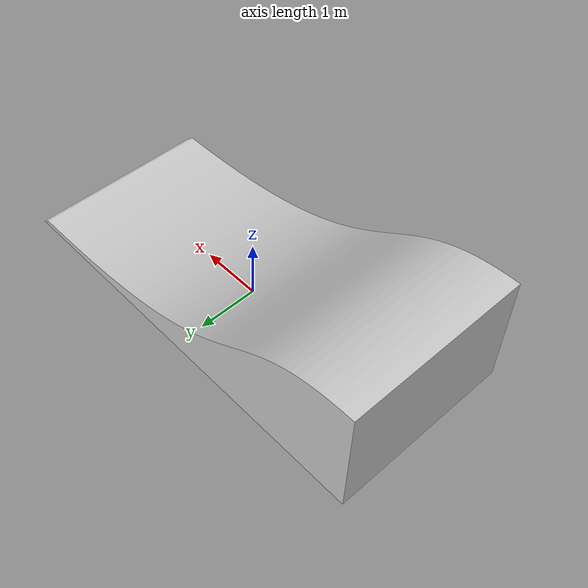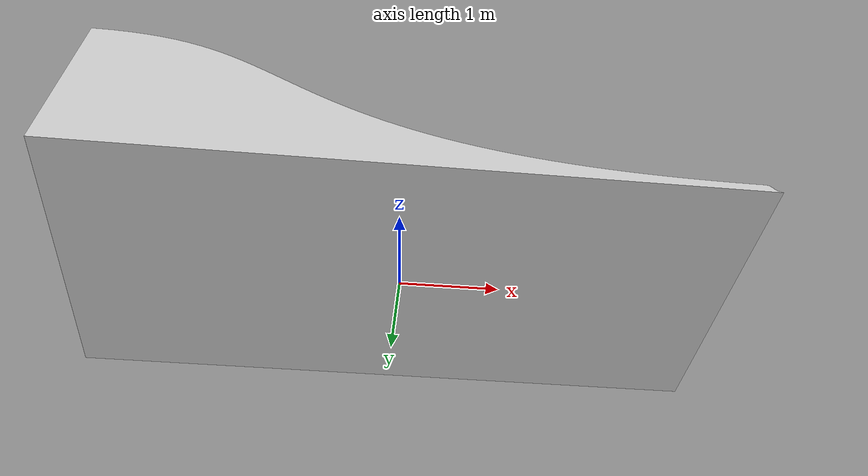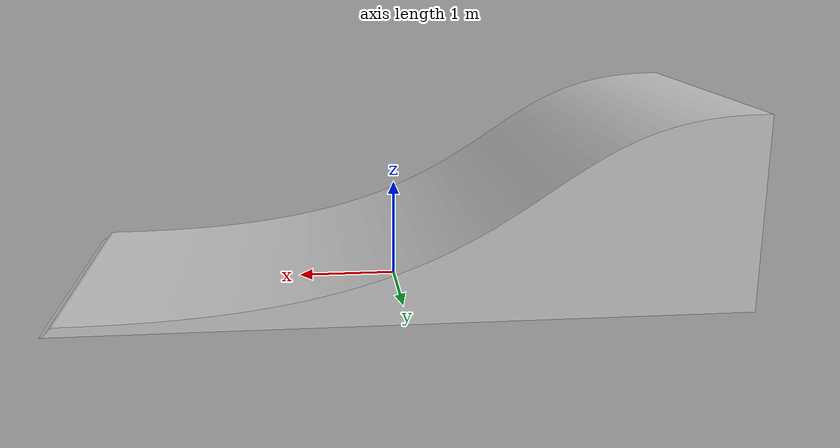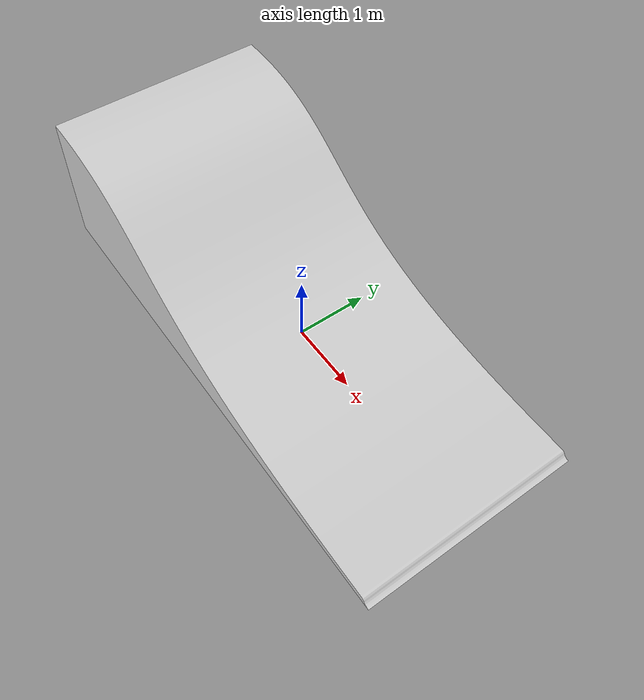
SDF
<?xml version="1.0" ?>
<sdf version="1.6">
  <model name="side_slope_curve_gap">
    <static>true</static>
    <link name="slope_1">
      <pose>0 0 0 0 0 -1.5707</pose>
      <collision name="collision">
        <geometry>
          <mesh>
            <uri>model://side_slope/meshes/side_slope.dae</uri>
            <scale>1.5 1.5 1.5</scale>
          </mesh>
        </geometry>
      </collision>
      <visual name="visual">
        <geometry>
          <mesh>
            <uri>model://side_slope/meshes/side_slope.dae</uri>
            <scale>1.5 1.5 1.5</scale>
          </mesh>
        </geometry>
        <material>
          <ambient>0.7 0.7 0.7 1</ambient>
          <diffuse>0.8 0.8 0.8 1</diffuse>
          <specular>0.1 0.1 0.1 1</specular>
          <emissive>0 0 0 0</emissive>
        </material>
      </visual>
    </link>
  </model>
</sdf>
